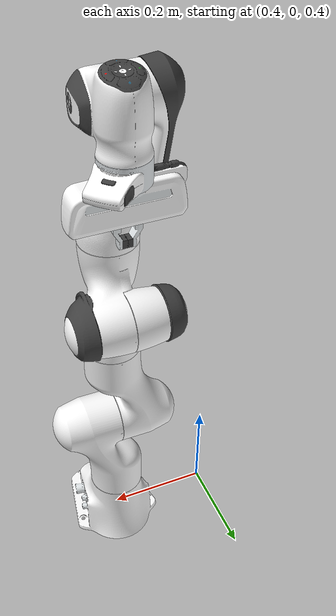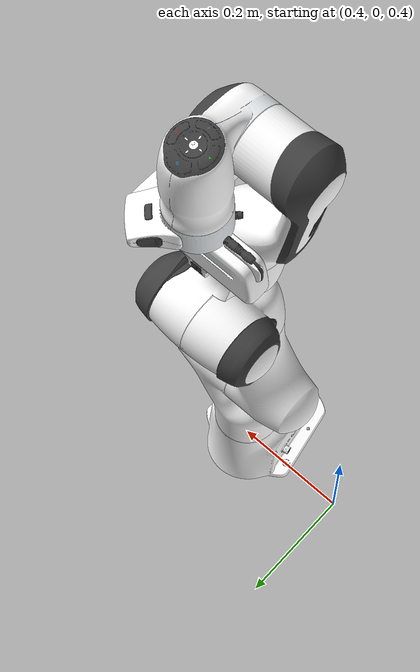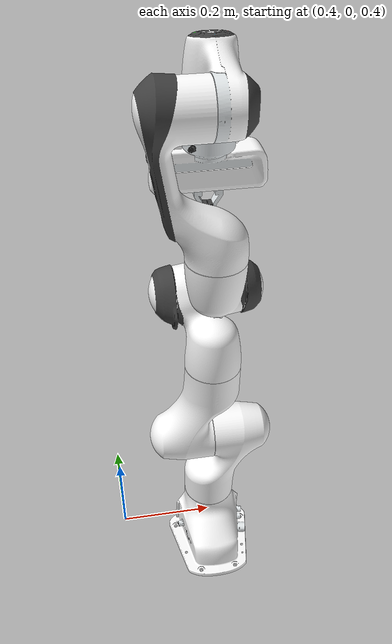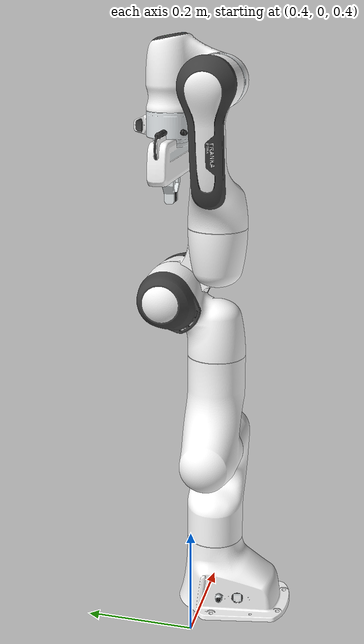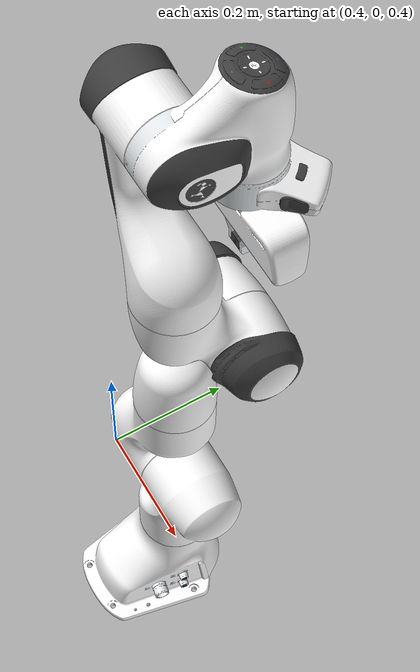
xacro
<?xml version="1.0"?>
<robot xmlns:xacro="http://www.ros.org/wiki/xacro">
    <xacro:property name="link0_mass" value="0.1" />
    <xacro:property name="link1_mass" value="0.1" />
    <xacro:property name="link2_mass" value="0.1" />
    <xacro:property name="link3_mass" value="0.1" />
    <xacro:property name="link4_mass" value="0.1" />
    <xacro:property name="link5_mass" value="0.1" />
    <xacro:property name="link6_mass" value="0.1" />
    <xacro:property name="link7_mass" value="0.1" />
    <xacro:property name="hand_mass" value="0.1" />
    <xacro:property name="finger_mass" value="0.1" />

    <!-- World Frame -->
    <link name="world"/>

    <!-- Link 0 - Base -->
    <link name="panda_link0">
        <visual>
            <geometry>
                <mesh filename="package://panda_description/meshes/visual/link0.dae"/>
            </geometry>
        </visual>
        <collision>
            <geometry>
                <mesh filename="package://panda_description/meshes/collision/link0.obj"/>
            </geometry>
        </collision>
        <inertial>
            <origin xyz="0 0 0" rpy="0.0 0.0 0.0"/>
            <mass value="${link0_mass}"/>
            <inertia ixx="0.1" ixy="0.0" ixz="0.0" iyy="0.1" iyz="0.0" izz="0.1"/>
        </inertial>
    </link>

    <!-- World-Base Joint -->
    <joint name="virtual_joint" type="fixed">
        <parent link="world"/>
        <child link="panda_link0"/>
        <origin xyz="0.6 0 0.35" rpy="0 0 ${pi/2.0}"/>
    </joint>

    <!-- Link 1 -->
    <link name="panda_link1">
        <visual>
            <geometry>
                <mesh filename="package://panda_description/meshes/visual/link1.dae"/>
            </geometry>
        </visual>
        <collision>
            <geometry>
                <mesh filename="package://panda_description/meshes/collision/link1.obj"/>
            </geometry>
        </collision>
        <inertial>
            <origin xyz="0 0 0" rpy="0.0 0.0 0.0"/>
            <mass value="${link1_mass}"/>
            <inertia ixx="0.1" ixy="0.0" ixz="0.0" iyy="0.1" iyz="0.0" izz="0.1"/>
        </inertial>
    </link>

    <!-- Joint 1 -->
    <joint name="panda_joint1" type="revolute">
        <parent link="panda_link0"/>
        <child link="panda_link1"/>
        <origin xyz="0 0 0.333" rpy="0 0 0"/>
        <axis xyz="0 0 1"/>
        <limit effort="30.0" lower="-2.9671" upper="2.9671" velocity="10.0"/>
        <safety_controller k_position="100.0" k_velocity="40.0" soft_lower_limit="-2.8973" soft_upper_limit="2.8973"/>
    </joint>

    <!-- Link 2 -->
    <link name="panda_link2">
        <visual>
            <geometry>
                <mesh filename="package://panda_description/meshes/visual/link2.dae"/>
            </geometry>
        </visual>
        <collision>
            <geometry>
                <mesh filename="package://panda_description/meshes/collision/link2.obj"/>
            </geometry>
        </collision>
        <inertial>
            <origin xyz="0 0 0" rpy="0.0 0.0 0.0"/>
            <mass value="${link2_mass}"/>
            <inertia ixx="0.1" ixy="0.0" ixz="0.0" iyy="0.1" iyz="0.0" izz="0.1"/>
        </inertial>
    </link>

    <!-- Joint 2 -->
    <joint name="panda_joint2" type="revolute">
        <parent link="panda_link1"/>
        <child link="panda_link2"/>
        <origin rpy="-${pi/2.0} 0 0" xyz="0 0 0"/>
        <axis xyz="0 0 1"/>
        <limit effort="30.0" lower="-1.8326" upper="1.8326" velocity="10.0"/>
        <safety_controller k_position="100.0" k_velocity="40.0" soft_lower_limit="-1.7628" soft_upper_limit="1.7628"/>
    </joint>

    <!-- Link 3 -->
    <link name="panda_link3">
        <visual>
            <geometry>
                <mesh filename="package://panda_description/meshes/visual/link3.dae"/>
            </geometry>
        </visual>
        <collision>
            <geometry>
                <mesh filename="package://panda_description/meshes/collision/link3.obj"/>
            </geometry>
        </collision>
        <inertial>
            <origin xyz="0 0 0" rpy="0.0 0.0 0.0"/>
            <mass value="${link3_mass}"/>
            <inertia ixx="0.1" ixy="0.0" ixz="0.0" iyy="0.1" iyz="0.0" izz="0.1"/>
        </inertial>
    </link>

    <!-- Joint 3 -->
    <joint name="panda_joint3" type="revolute">
        <parent link="panda_link2"/>
        <child link="panda_link3"/>
        <origin rpy="${pi/2.0} 0 0" xyz="0 -0.316 0"/>
        <axis xyz="0 0 1"/>
        <limit effort="30.0" lower="-2.9671" upper="2.9671" velocity="10.0"/>
        <safety_controller k_position="100.0" k_velocity="40.0" soft_lower_limit="-2.8973" soft_upper_limit="2.8973"/>
    </joint>

    <!-- Link 4 -->
    <link name="panda_link4">
        <visual>
            <geometry>
                <mesh filename="package://panda_description/meshes/visual/link4.dae"/>
            </geometry>
        </visual>
        <collision>
            <geometry>
                <mesh filename="package://panda_description/meshes/collision/link4.obj"/>
            </geometry>
        </collision>
        <inertial>
            <origin xyz="0 0 0" rpy="0.0 0.0 0.0"/>
            <mass value="${link4_mass}"/>
            <inertia ixx="0.1" ixy="0.0" ixz="0.0" iyy="0.1" iyz="0.0" izz="0.1"/>
        </inertial>
    </link>

    <!-- Joint 4 -->
    <joint name="panda_joint4" type="revolute">
        <parent link="panda_link3"/>
        <child link="panda_link4"/>
        <origin rpy="${pi/2.0} 0 0" xyz="0.0825 0 0"/>
        <axis xyz="0 0 1"/>
        <limit effort="30.0" lower="-2.9671" upper="0.105" velocity="10.0"/>
        <safety_controller k_position="100.0" k_velocity="40.0" soft_lower_limit="-2.8973" soft_upper_limit="0.10"/>
    </joint>

    <!-- Link 5 -->
    <link name="panda_link5">
        <visual>
            <geometry>
                <mesh filename="package://panda_description/meshes/visual/link5.dae"/>
            </geometry>
        </visual>
        <collision>
            <geometry>
                <mesh filename="package://panda_description/meshes/collision/link5.obj"/>
            </geometry>
        </collision>
        <inertial>
            <origin xyz="0 0 0" rpy="0.0 0.0 0.0"/>
            <mass value="${link5_mass}"/>
            <inertia ixx="0.1" ixy="0.0" ixz="0.0" iyy="0.1" iyz="0.0" izz="0.1"/>
        </inertial>
    </link>

    <!-- Joint 5 -->
    <joint name="panda_joint5" type="revolute">
        <parent link="panda_link4"/>
        <child link="panda_link5"/>
        <origin rpy="-${pi/2.0} 0 0" xyz="-0.0825 0.384 0"/>
        <axis xyz="0 0 1"/>
        <limit effort="30.0" lower="-2.9671" upper="2.9671" velocity="10.0"/>
        <safety_controller k_position="100.0" k_velocity="40.0" soft_lower_limit="-2.8973" soft_upper_limit="2.8973"/>
    </joint>

    <!-- Link 6 -->
    <link name="panda_link6">
        <visual>
            <geometry>
                <mesh filename="package://panda_description/meshes/visual/link6.dae"/>
            </geometry>
        </visual>
        <collision>
            <geometry>
                <mesh filename="package://panda_description/meshes/collision/link6.obj"/>
            </geometry>
        </collision>
        <inertial>
            <origin xyz="0 0 0" rpy="0.0 0.0 0.0"/>
            <mass value="${link6_mass}"/>
            <inertia ixx="0.1" ixy="0.0" ixz="0.0" iyy="0.1" iyz="0.0" izz="0.1"/>
        </inertial>
    </link>

    <!-- Joint 6 -->
    <joint name="panda_joint6" type="revolute">
        <parent link="panda_link5"/>
        <child link="panda_link6"/>
        <origin rpy="${pi/2.0} 0 0" xyz="0 0 0"/>
        <axis xyz="0 0 1"/>
        <limit effort="30.0" lower="-0.0873" upper="3.8223" velocity="10.0"/>
        <safety_controller k_position="100.0" k_velocity="40.0" soft_lower_limit="-0.0175" soft_upper_limit="3.7525"/>
    </joint>

    <!-- Link 7 -->
    <link name="panda_link7">
        <visual>
            <geometry>
                <mesh filename="package://panda_description/meshes/visual/link7.dae"/>
            </geometry>
        </visual>
        <collision>
            <geometry>
                <mesh filename="package://panda_description/meshes/collision/link7.obj"/>
            </geometry>
        </collision>
        <inertial>
            <origin xyz="0 0 0" rpy="0.0 0.0 0.0"/>
            <mass value="${link7_mass}"/>
            <inertia ixx="0.1" ixy="0.0" ixz="0.0" iyy="0.1" iyz="0.0" izz="0.1"/>
        </inertial>
    </link>

    <!-- Joint 7 -->
    <joint name="panda_joint7" type="revolute">
        <parent link="panda_link6"/>
        <child link="panda_link7"/>
        <origin rpy="${pi/2.0} 0 0" xyz="0.088 0 0"/>
        <axis xyz="0 0 1"/>
        <limit effort="30.0" lower="-2.9671" upper="2.9671" velocity="10.0"/>
        <safety_controller k_position="100.0" k_velocity="40.0" soft_lower_limit="-2.8973" soft_upper_limit="2.8973"/>
    </joint>

    <!-- Hand Link -->
    <link name="panda_hand">
        <visual>
            <geometry>
                <mesh filename="package://panda_description/meshes/visual/hand.dae"/>
            </geometry>
        </visual>
        <collision>
            <geometry>
                <mesh filename="package://panda_description/meshes/collision/hand.obj"/>
            </geometry>
        </collision>
        <inertial>
            <origin xyz="0 0 0" rpy="0.0 0.0 0.0"/>
            <mass value="${hand_mass}"/>
            <inertia ixx="0.1" ixy="0.0" ixz="0.0" iyy="0.1" iyz="0.0" izz="0.1"/>
        </inertial>
    </link>

    <!-- Hand Joint -->
    <joint name="panda_hand_joint" type="fixed">
        <parent link="panda_link7"/>
        <child link="panda_hand"/>
        <origin rpy="0 0 0" xyz="0 0 0.106"/>
    </joint>

    <!-- Left Finger Link -->
    <link name="panda_leftfinger">
        <visual>
            <geometry>
                <mesh filename="package://panda_description/meshes/visual/finger.dae"/>
            </geometry>
        </visual>
        <collision>
            <geometry>
                <mesh filename="package://panda_description/meshes/collision/finger.obj"/>
            </geometry>
        </collision>
        <inertial>
            <origin xyz="0 0 0" rpy="0.0 0.0 0.0"/>
            <mass value="${finger_mass}"/>
            <inertia ixx="0.1" ixy="0.0" ixz="0.0" iyy="0.1" iyz="0.0" izz="0.1"/>
        </inertial>
        <gazebo reference="panda_leftfinger">
            <mu1>2.0</mu1>   <!-- 静摩擦系数 -->
            <mu2>1.5</mu2>   <!-- 动摩擦系数 -->
            <kp>1e5</kp>     <!-- 刚度（可选，提高接触刚度可减少穿透） -->
            <kd>1e3</kd>     <!-- 阻尼（可选） -->
        </gazebo>
    </link>

    <!-- Finger Joint 1 -->
    <joint name="panda_finger_joint1" type="prismatic">
        <parent link="panda_hand"/>
        <child link="panda_leftfinger"/>
        <origin rpy="0 0 0" xyz="0 0 0.0584"/>
        <axis xyz="0 1 0"/>
        <limit effort="1000.0" lower="-0.001" upper="0.05" velocity="20.0"/>
    </joint>

    <!-- Right Finger Link -->
    <link name="panda_rightfinger">
        <visual>
            <geometry>
                <mesh filename="package://panda_description/meshes/visual/finger.dae"/>
            </geometry>
            <origin rpy="0 0 ${pi}" xyz="0 0 0"/>
        </visual>
        <collision>
            <geometry>
                <mesh filename="package://panda_description/meshes/collision/finger.obj"/>
            </geometry>
            <origin rpy="0 0 ${pi}" xyz="0 0 0"/>
        </collision>
        <inertial>
            <origin xyz="0 0 0" rpy="0.0 0.0 0.0"/>
            <mass value="${finger_mass}"/>
            <inertia ixx="0.1" ixy="0.0" ixz="0.0" iyy="0.1" iyz="0.0" izz="0.1"/>
        </inertial>
        <gazebo reference="panda_leftfinger">
            <mu1>2.0</mu1>   <!-- 静摩擦系数 -->
            <mu2>1.5</mu2>   <!-- 动摩擦系数 -->
            <kp>1e5</kp>     <!-- 刚度（可选，提高接触刚度可减少穿透） -->
            <kd>1e3</kd>     <!-- 阻尼（可选） -->
        </gazebo>
    </link>

    <!-- Finger Joint 2 -->
    <joint name="panda_finger_joint2" type="prismatic">
        <parent link="panda_hand"/>
        <child link="panda_rightfinger"/>
        <origin rpy="0 0 0" xyz="0 0 0.0584"/>
        <axis xyz="0 1 0"/>
        <limit effort="1000.0" lower="-0.05" upper="0.001" velocity="20.0"/>
        <mimic joint="panda_finger_joint1" multiplier="-1"/>
    </joint>

</robot>
